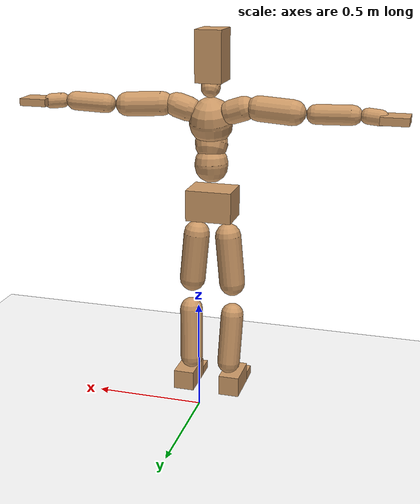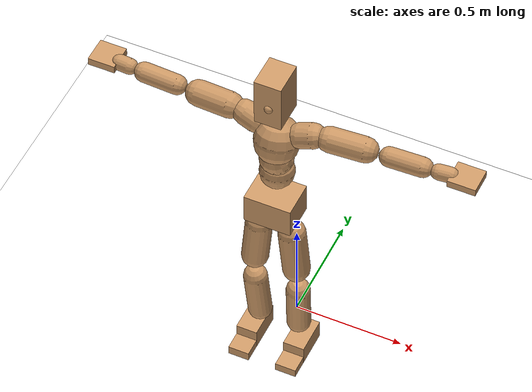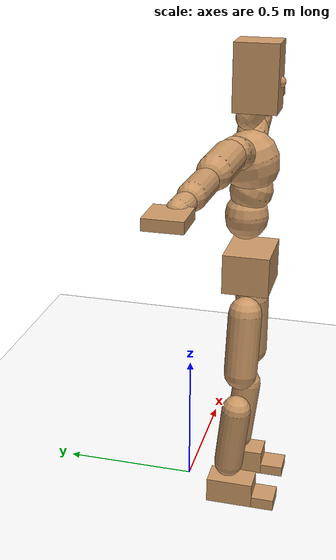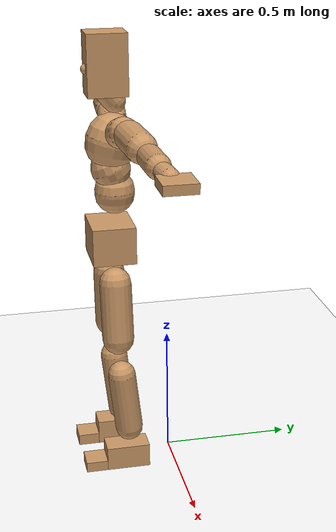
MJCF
<mujoco model="humanoid">
  <option integrator="implicitfast" />

  <visual>
    <global offwidth="1280" offheight="960" />
    <headlight active="1" ambient="0.34 0.34 0.34" diffuse="0.5 0.5 0.5" />
  </visual>

  <default>
    <joint damping="2" stiffness="2" armature="0.01" limited="true" solimplimit="0 .99 .01" />
    <geom condim="1" friction="0.7 0.005 0.0001" solimp=".99 .99 .003" solref="0.015 1" margin="0.001" rgba="0.8 0.6 .4 1" />
    <default class="smplcontact">
      <geom condim="3" friction="1. 0.005 0.0001" solref="0.015 1" solimp="0.98 0.98 0.001" priority="1" />
    </default>
    <default class="stiff_medium">
      <joint stiffness="10" />
    </default>
    <default class="stiff_medium_higher">
      <joint stiffness="50" />
    </default>
    <default class="stiff_high">
      <joint stiffness="100" />
    </default>
  </default>

  <asset>
    <texture type="skybox" builtin="gradient" rgb1="0.99 0.99 0.99" rgb2="0.608 0.828 0.892" width="100" />
    <texture builtin="flat" height="1278" mark="cross" markrgb="1 1 1" name="texgeom" random="0.01" rgb1="0.8 0.6 0.4" rgb2="0.8 0.6 0.4" type="cube" width="127" />
    <texture name="texplane" type="2d" builtin="checker" markrgb="1 1 1" rgb1="0.756 0.772 0.76" rgb2="0.6 0.6 0.6" width="100" height="100" />
    <material name="MatPlane" reflectance="0.5" texture="texplane" texrepeat="1 1" texuniform="true" />
    <material name="geom" texture="texgeom" texuniform="true" />
  </asset>

  <worldbody>
    <light name="tracking_light" pos="0 0 7" dir="0 0 -1" directional="true" cutoff="100" exponent="1" diffuse="1 1 1" specular="0.1 0.1 0.1" mode="trackcom" />
    <camera name="back" pos="0 3 2.4" xyaxes="-1 0 0 0 -1 2" mode="trackcom" />
    <camera name="side" pos="-3 0 2.4" xyaxes="0 -1 0 1 0 2" mode="trackcom" />
    <camera name="front_side" pos="-2.8 -2.8 0.8" xyaxes="0.5 -0.5 0 0.1 0.1 1" mode="trackcom" />
    <geom condim="3" name="floor" pos="0 0 0" rgba="1 1 1 1" size="100 100 .2" type="plane" material="MatPlane" />
    <body name="Pelvis" pos="-0.0018 -0.2233 0.9367" euler="90 0 0">
      <site name="Pelvis" size="0.01" />
      <freejoint name="Pelvis" />
      <geom type="box" pos="-0.0000 -0.0121 -0.0055" size="0.1069 0.0722 0.083" quat="1.0000 0.0000 0.0000 0.0000" density="3165.830099" name="Pelvis" />
      <body name="L_Hip" pos="0.0695 -0.0914 -0.0068">
        <joint name="L_Hip_x" type="hinge" pos="0 0 0" axis="1 0 0" stiffness="10.0" range="-160.0 22.92" class="stiff_medium" damping="14.999999999999998" armature="0.009999999999999998"/>
        <joint name="L_Hip_y" type="hinge" pos="0 0 0" axis="0 1 0" stiffness="10.0" range="-70.0 70.0" class="stiff_medium" damping="10.000000000000004" armature="0.010000000000000009"/>
        <joint name="L_Hip_z" type="hinge" pos="0 0 0" axis="0 0 1" stiffness="10.0" range="-28.65 90.0" class="stiff_medium" damping="9.999999999999998" armature="0.009999999999999998"/>
        <geom type="capsule" density="2040.816327" fromto="0.0069 -0.075 -0.0009 0.0274 -0.3002 -0.0036" size="0.0615" name="L_Hip" />
        <body name="L_Knee" pos="0.0343 -0.3752 -0.0045">
          <joint name="L_Knee_x" type="hinge" pos="0 0 0" axis="1 0 0" range="-5.16 171.89" damping="7.999999999999999" armature="0.009999999999999998" stiffness="2.0"/>
          <joint name="L_Knee_y" type="hinge" pos="0 0 0" axis="0 1 0" range="-4.58 6.88" damping="8.0" armature="0.01" stiffness="2.0"/>
          <joint name="L_Knee_z" type="hinge" pos="0 0 0" axis="0 0 1" range="-6.88 4.58" damping="7.9999999999999964" armature="0.009999999999999993" stiffness="2.0"/>
          <geom type="capsule" density="1234.567901" fromto="-0.0027 -0.0796 -0.0087 -0.0109 -0.3184 -0.035" size="0.0541" name="L_Knee" />
          <body name="L_Ankle" pos="-0.0136 -0.398 -0.0437">
            <joint name="L_Ankle_x" type="hinge" pos="0 0 0" axis="1 0 0" range="-45.84 45.84" class="stiff_medium" damping="6.000000000000075" armature="0.010000000000000248" stiffness="10.0"/>
            <joint name="L_Ankle_y" type="hinge" pos="0 0 0" axis="0 1 0" range="-74.48 22.92" class="stiff_medium" damping="2.9999999999999996" armature="0.009999999999999998" stiffness="10.0"/>
            <joint name="L_Ankle_z" type="hinge" pos="0 0 0" axis="0 0 1" range="-4.58 4.58" class="stiff_medium" damping="6.000000000000144" armature="0.010000000000000482" stiffness="10.0"/>
            <geom type="box" pos="0.0233 -0.0239 0.0242" size="0.0483 0.0464 0.085" quat="1.0000 0.0000 0.0000 0.0000" density="449.071558" name="L_Ankle" class="smplcontact" />
            <body name="L_Toe" pos="0.0264 -0.0558 0.1193">
              <joint name="L_Toe_x" type="hinge" pos="0 0 0" axis="1 0 0" range="-91.67 22.92" armature="0.009999999999999147" damping="1.9999999999999147" stiffness="2.0"/>
              <joint name="L_Toe_y" type="hinge" pos="0 0 0" axis="0 1 0" range="-4.58 4.58" armature="0.009999999999999976" damping="1.9999999999999976" stiffness="2.0"/>
              <joint name="L_Toe_z" type="hinge" pos="0 0 0" axis="0 0 1" range="-4.58 4.58" armature="0.009999999999998004" damping="1.9999999999998002" stiffness="2.0"/>
              <geom type="box" pos="-0.003 0.0055 0.0248" size="0.0478 0.02 0.0496" quat="1.0000 0.0000 0.0000 0.0000" density="423.206892" name="L_Toe" class="smplcontact" />
            </body>
          </body>
        </body>
      </body>
      <body name="R_Hip" pos="-0.0677 -0.0905 -0.0043">
        <joint name="R_Hip_x" type="hinge" pos="0 0 0" axis="1 0 0" stiffness="10.0" range="-160.0 22.92" class="stiff_medium" damping="14.999999999999998" armature="0.009999999999999998"/>
        <joint name="R_Hip_y" type="hinge" pos="0 0 0" axis="0 1 0" stiffness="10.0" range="-70.0 70.0" class="stiff_medium" damping="10.000000000000004" armature="0.010000000000000009"/>
        <joint name="R_Hip_z" type="hinge" pos="0 0 0" axis="0 0 1" stiffness="10.0" range="-90.0 28.65" class="stiff_medium" damping="9.999999999999998" armature="0.009999999999999998"/>
        <geom type="capsule" density="2040.816327" fromto="-0.0077 -0.0765 -0.0018 -0.0306 -0.3061 -0.0071" size="0.0606" name="R_Hip" />
        <body name="R_Knee" pos="-0.0383 -0.3826 -0.0089">
          <joint name="R_Knee_x" type="hinge" pos="0 0 0" axis="1 0 0" range="-5.16 171.89" damping="7.999999999999999" armature="0.009999999999999998" stiffness="2.0"/>
          <joint name="R_Knee_y" type="hinge" pos="0 0 0" axis="0 1 0" range="-6.88 4.58" damping="8.0" armature="0.01" stiffness="2.0"/>
          <joint name="R_Knee_z" type="hinge" pos="0 0 0" axis="0 0 1" range="-4.58 6.88" damping="7.9999999999999964" armature="0.009999999999999993" stiffness="2.0"/>
          <geom type="capsule" density="1234.567901" fromto="0.0032 -0.0797 -0.0085 0.0126 -0.3187 -0.0338" size="0.0541" name="R_Knee" />
          <body name="R_Ankle" pos="0.0158 -0.3984 -0.0423">
            <joint name="R_Ankle_x" type="hinge" pos="0 0 0" axis="1 0 0" range="-45.84 45.84" class="stiff_medium" damping="6.000000000000075" armature="0.010000000000000248" stiffness="10.0"/>
            <joint name="R_Ankle_y" type="hinge" pos="0 0 0" axis="0 1 0" range="-22.92 74.48" class="stiff_medium" damping="2.9999999999999996" armature="0.009999999999999998" stiffness="10.0"/>
            <joint name="R_Ankle_z" type="hinge" pos="0 0 0" axis="0 0 1" range="-4.58 4.58" class="stiff_medium" damping="6.000000000000144" armature="0.010000000000000482" stiffness="10.0"/>
            <geom type="box" pos="-0.0212 -0.0174 0.0256" size="0.0483 0.0478 0.0865" quat="1.0000 0.0000 0.0000 0.0000" density="434.700981" name="R_Ankle" class="smplcontact" />
            <body name="R_Toe" pos="-0.0254 -0.0481 0.1233">
              <joint name="R_Toe_x" type="hinge" pos="0 0 0" axis="1 0 0" range="-91.67 22.92" armature="0.009999999999999147" damping="1.9999999999999147" stiffness="2.0"/>
              <joint name="R_Toe_y" type="hinge" pos="0 0 0" axis="0 1 0" range="-4.58 4.58" armature="0.009999999999999976" damping="1.9999999999999976" stiffness="2.0"/>
              <joint name="R_Toe_z" type="hinge" pos="0 0 0" axis="0 0 1" range="-4.58 4.58" armature="0.009999999999998004" damping="1.9999999999998002" stiffness="2.0"/>
              <geom type="box" pos="0.0042 0.0045 0.0227" size="0.0479 0.0216 0.0493" quat="1.0000 0.0000 0.0000 0.0000" density="407.384095" name="R_Toe" class="smplcontact" />
            </body>
          </body>
        </body>
      </body>
      <body name="Torso" pos="-0.0025 0.109 -0.0267">
        <joint name="Torso_x" type="hinge" pos="0 0 0" axis="1 0 0" range="-25.78 57.3" class="stiff_medium" damping="15.908270111112087" armature="0.010577241207886777" stiffness="10.633861176470589"/>
        <joint name="Torso_y" type="hinge" pos="0 0 0" axis="0 1 0" range="-57.3 57.3" class="stiff_high" damping="22.396844353132916" armature="0.011846322965056274" stiffness="105.85956470588236"/>
        <joint name="Torso_z" type="hinge" pos="0 0 0" axis="0 0 1" range="-34.38 34.38" class="stiff_high" damping="21.512089946269967" armature="0.011013280140988863" stiffness="105.04818"/>
        <geom type="capsule" density="2040.816327" fromto="0.0025 0.0608 0.0005 0.003 0.0743 0.0006" size="0.0769" name="Torso" />
        <body name="Spine" pos="0.0055 0.1352 0.0011">
          <joint name="Spine_x" type="hinge" pos="0 0 0" axis="1 0 0" stiffness="10.655433921568626" range="-25.78 57.3" class="stiff_medium" damping="15.8654151336912" armature="0.010499031103321574"/>
          <joint name="Spine_y" type="hinge" pos="0 0 0" axis="0 1 0" stiffness="10.650494509803924" range="-57.3 57.3" class="stiff_high" damping="8.990909906850938" armature="0.011859258753006037"/>
          <joint name="Spine_z" type="hinge" pos="0 0 0" axis="0 0 1" stiffness="21.367421960784313" range="-34.38 34.38" class="stiff_high" damping="13.157591512495483" armature="0.011252996288216554"/>
          <geom type="capsule" density="2040.816327" fromto="0.0007 0.0238 0.0114 0.0008 0.0291 0.014" size="0.0755" name="Spine" />
          <body name="Chest" pos="0.0015 0.0529 0.0254">
            <joint name="Chest_x" type="hinge" pos="0 0 0" axis="1 0 0" stiffness="10.678460588235295" range="-25.78 57.3" class="stiff_medium" damping="15.8523471575378" armature="0.010459140136524768"/>
            <joint name="Chest_y" type="hinge" pos="0 0 0" axis="0 1 0" stiffness="11.165754081632652" range="-57.3 57.3" class="stiff_high" damping="9.209525861569277" armature="0.01186879178384829"/>
            <joint name="Chest_z" type="hinge" pos="0 0 0" axis="0 0 1" stiffness="21.219770980392155" range="-34.38 34.38" class="stiff_high" damping="13.178310114217842" armature="0.011367010408134872"/>
            <geom type="capsule" density="2040.816327" fromto="-0.0009 0.0682 -0.0173 -0.001 0.0833 -0.0212" size="0.1002" name="Chest" />
            <body name="Neck" pos="-0.0028 0.2139 -0.0429">
              <joint name="Neck_x" type="hinge" pos="0 0 0" axis="1 0 0" range="-28.65 57.3" class="stiff_medium_higher" damping="10.000000000000009" armature="0.010000000000000021" stiffness="50.0"/>
              <joint name="Neck_y" type="hinge" pos="0 0 0" axis="0 1 0" range="-40.11 40.11" class="stiff_medium_higher" damping="10.0" armature="0.010000000000000002" stiffness="50.0"/>
              <joint name="Neck_z" type="hinge" pos="0 0 0" axis="0 0 1" range="-40.11 40.11" class="stiff_medium_higher" damping="10.0" armature="0.01" stiffness="50.0"/>
              <geom type="capsule" density="1000" fromto="0.001 0.013 0.0103 0.0041 0.052 0.0411" size="0.0436" name="Neck" />
              <body name="Head" pos="0.0052 0.065 0.0513">
                <joint name="Head_x" type="hinge" pos="0 0 0" axis="1 0 0" range="-28.65 57.3" class="stiff_medium_higher" damping="2.000000000000005" armature="0.010000000000000049" stiffness="50.0"/>
                <joint name="Head_y" type="hinge" pos="0 0 0" axis="0 1 0" range="-40.11 40.11" class="stiff_medium_higher" damping="1.9999999999999998" armature="0.009999999999999998" stiffness="50.0"/>
                <joint name="Head_z" type="hinge" pos="0 0 0" axis="0 0 1" range="-40.11 40.11" class="stiff_medium_higher" damping="2.000000000000003" armature="0.010000000000000033" stiffness="50.0"/>
                <geom type="box" pos="-0.0042 0.0876 -0.0116" size="0.0606 0.1154 0.076" quat="1.0000 0.0000 0.0000 0.0000" density="1018.069894" name="Head" />
                <geom type="capsule" name="nose" size="0.02 0.01" pos="0 0.07 0.05" quat="1 0 0 0" mass="0" contype="0" conaffinity="0" />
              </body>
            </body>
            <body name="L_Thorax" pos="0.0788 0.1217 -0.0341">
              <joint name="L_Thorax_x" type="hinge" pos="0 0 0" axis="1 0 0" range="-10.89 4.58" class="stiff_medium_higher" damping="24.617894548023575" armature="0.012739282736675501" stiffness="59.465743137254904"/>
              <joint name="L_Thorax_y" type="hinge" pos="0 0 0" axis="0 1 0" range="-28.65 17.19" class="stiff_medium_higher" damping="23.825894665025523" armature="0.011953243154150011" stiffness="59.36393676470588"/>
              <joint name="L_Thorax_z" type="hinge" pos="0 0 0" axis="0 0 1" range="-31.51 40.11" class="stiff_medium_higher" damping="23.825372084701463" armature="0.011952533161535177" stiffness="59.36485882352942"/>
              <geom type="capsule" density="1000" fromto="0.0182 0.0061 -0.0018 0.0728 0.0244 -0.0071" size="0.0560075" name="L_Thorax" />
              <body name="L_Shoulder" pos="0.091 0.0305 -0.0089">
                <joint name="L_Shoulder_x" type="hinge" pos="0 0 0" axis="1 0 0" range="-97.4 97.4" class="stiff_medium" damping="7.478494239969782" armature="0.013045062541822085" stiffness="11.909119705882354"/>
                <joint name="L_Shoulder_y" type="hinge" pos="0 0 0" axis="0 1 0" range="-108.86 80.21" class="stiff_medium" damping="7.1580837094298895" armature="0.01198016053229578" stiffness="11.880327352941178"/>
                <joint name="L_Shoulder_z" type="hinge" pos="0 0 0" axis="0 0 1" range="-97.4 85.94" class="stiff_medium" damping="7.1584693568721605" armature="0.011979230464405804" stiffness="11.88253"/>
                <geom type="capsule" density="1000" fromto="0.0519 -0.0026 -0.0055 0.2077 -0.0102 -0.022" size="0.0555775" name="L_Shoulder" />
                <body name="L_Elbow" pos="0.2596 -0.0128 -0.0275">
                  <joint name="L_Elbow_x" type="hinge" pos="0 0 0" axis="1 0 0" range="-17.19 4.58" damping="6.365512535711371" armature="0.013538375900171769" stiffness="2.3943640000000004"/>
                  <joint name="L_Elbow_y" type="hinge" pos="0 0 0" axis="0 1 0" range="-180.0 17.19" damping="6.020694634182671" armature="0.01211151019586856" stiffness="2.394334862745098"/>
                  <joint name="L_Elbow_z" type="hinge" pos="0 0 0" axis="0 0 1" range="-100.84 4.58" damping="6.020140283438718" armature="0.012106629456544464" stiffness="2.3948590588235295"/>
                  <geom type="capsule" density="1000" fromto="0.0498 0.0018 -0.0002 0.1994 0.0072 -0.0009" size="0.0435375" name="L_Elbow" />
                  <body name="L_Wrist" pos="0.2492 0.009 -0.0012">
                    <joint name="L_Wrist_x" type="hinge" pos="0 0 0" axis="1 0 0" range="-180.0 22.92" armature="0.013693588371446653" damping="2.5919731595345876" stiffness="2.453091431372549"/>
                    <joint name="L_Wrist_y" type="hinge" pos="0 0 0" axis="0 1 0" range="-17.19 17.19" armature="0.01256742673757628" damping="2.4809214159661654" stiffness="2.4487793725490197"/>
                    <joint name="L_Wrist_z" type="hinge" pos="0 0 0" axis="0 0 1" range="-22.92 22.92" armature="0.012504340393661138" damping="2.4754306422398327" stiffness="2.4502519411764707"/>
                    <geom type="capsule" density="1000" fromto="0.0168 -0.0016 -0.003 0.0672 -0.0065 -0.012" size="0.034185" name="L_Wrist" class="smplcontact" />
                    <body name="L_Hand" pos="0.084 -0.0082 -0.0149">
                      <joint name="L_Hand_x" type="hinge" pos="0 0 0" axis="1 0 0" range="-17.19 17.19" armature="0.01427206573570279" damping="2.663091770650525" stiffness="2.484594"/>
                      <joint name="L_Hand_y" type="hinge" pos="0 0 0" axis="0 1 0" range="-51.57 51.57" armature="0.01333767753891355" damping="2.5744402726464397" stiffness="2.484594"/>
                      <joint name="L_Hand_z" type="hinge" pos="0 0 0" axis="0 0 1" range="-91.67 91.67" armature="0.013088603598437698" damping="2.5502888451725116" stiffness="2.484594"/>
                      <geom type="box" pos="0.0493 0.001 -0.0058" size="0.0628875 0.016985 0.057835" quat="1.0000 0.0000 0.0000 0.0000" density="400.552564" name="L_Hand" class="smplcontact" />
                    </body>
                  </body>
                </body>
              </body>
            </body>
            <body name="R_Thorax" pos="-0.0818 0.1188 -0.0386">
              <joint name="R_Thorax_x" type="hinge" pos="0 0 0" axis="1 0 0" range="-10.89 4.58" class="stiff_medium_higher" damping="24.617894548023575" armature="0.012739282736675501" stiffness="59.465743137254904"/>
              <joint name="R_Thorax_y" type="hinge" pos="0 0 0" axis="0 1 0" range="-17.19 28.65" class="stiff_medium_higher" damping="23.825894665025523" armature="0.011953243154150011" stiffness="59.36393676470588"/>
              <joint name="R_Thorax_z" type="hinge" pos="0 0 0" axis="0 0 1" range="-40.11 31.51" class="stiff_medium_higher" damping="23.825372084701463" armature="0.011952533161535177" stiffness="59.36485882352942"/>
              <geom type="capsule" density="1000" fromto="-0.0192 0.0065 -0.0018 -0.0768 0.026 -0.0073" size="0.0549325" name="R_Thorax" />
              <body name="R_Shoulder" pos="-0.096 0.0326 -0.0091">
                <joint name="R_Shoulder_x" type="hinge" pos="0 0 0" axis="1 0 0" range="-97.4 97.4" class="stiff_medium" damping="7.478494239969782" armature="0.013045062541822085" stiffness="11.909119705882354"/>
                <joint name="R_Shoulder_y" type="hinge" pos="0 0 0" axis="0 1 0" range="-80.21 108.86" class="stiff_medium" damping="7.1580837094298895" armature="0.01198016053229578" stiffness="11.880327352941178"/>
                <joint name="R_Shoulder_z" type="hinge" pos="0 0 0" axis="0 0 1" range="-85.94 97.4" class="stiff_medium" damping="7.1584693568721605" armature="0.011979230464405804" stiffness="11.88253"/>
                <geom type="capsule" density="1000" fromto="-0.0507 -0.0027 -0.0043 -0.203 -0.0107 -0.0171" size="0.0570825" name="R_Shoulder" />
                <body name="R_Elbow" pos="-0.2537 -0.0133 -0.0214">
                  <joint name="R_Elbow_x" type="hinge" pos="0 0 0" axis="1 0 0" range="-17.19 4.58" damping="6.365512535711371" armature="0.013538375900171769" stiffness="2.3943640000000004"/>
                  <joint name="R_Elbow_y" type="hinge" pos="0 0 0" axis="0 1 0" range="-17.19 180.0" damping="6.020694634182671" armature="0.01211151019586856" stiffness="2.394334862745098"/>
                  <joint name="R_Elbow_z" type="hinge" pos="0 0 0" axis="0 0 1" range="-4.58 100.84" damping="6.020140283438718" armature="0.012106629456544464" stiffness="2.3948590588235295"/>
                  <geom type="capsule" density="1000" fromto="-0.0511 0.0016 -0.0011 -0.2042 0.0062 -0.0044" size="0.04386" name="R_Elbow" />
                  <body name="R_Wrist" pos="-0.2553 0.0078 -0.0056">
                    <joint name="R_Wrist_x" type="hinge" pos="0 0 0" axis="1 0 0" range="-180.0 22.92" armature="0.013693588371446653" damping="2.5919731595345876" stiffness="2.453091431372549"/>
                    <joint name="R_Wrist_y" type="hinge" pos="0 0 0" axis="0 1 0" range="-17.19 17.19" armature="0.01256742673757628" damping="2.4809214159661654" stiffness="2.4487793725490197"/>
                    <joint name="R_Wrist_z" type="hinge" pos="0 0 0" axis="0 0 1" range="-22.92 22.92" armature="0.012504340393661138" damping="2.4754306422398327" stiffness="2.4502519411764707"/>
                    <geom type="capsule" density="1000" fromto="-0.0169 -0.0012 -0.0021 -0.0677 -0.0049 -0.0083" size="0.035045" name="R_Wrist" class="smplcontact" />
                    <body name="R_Hand" pos="-0.0846 -0.0061 -0.0103">
                      <joint name="R_Hand_x" type="hinge" pos="0 0 0" axis="1 0 0" range="-17.19 17.19" armature="0.01427206573570279" damping="2.663091770650525" stiffness="2.484594"/>
                      <joint name="R_Hand_y" type="hinge" pos="0 0 0" axis="0 1 0" range="-51.57 51.57" armature="0.01333767753891355" damping="2.5744402726464397" stiffness="2.484594"/>
                      <joint name="R_Hand_z" type="hinge" pos="0 0 0" axis="0 0 1" range="-91.67 91.67" armature="0.013088603598437698" damping="2.5502888451725116" stiffness="2.484594"/>
                      <geom type="box" pos="-0.0462 -0.0009 -0.0079" size="0.0611675 0.01763 0.058695" quat="1.0000 0.0000 0.0000 0.0000" density="403.679611" name="R_Hand" class="smplcontact" />
                    </body>
                  </body>
                </body>
              </body>
            </body>
          </body>
        </body>
      </body>
    </body>
  </worldbody>
  <actuator>
    <general name="L_Hip_x" joint="L_Hip_x" biastype="affine" gainprm="287.33006409732246" biasprm="-215.3247604770444 -180.0 -1.9999999999999998" ctrllimited="true" ctrlrange="-1 1" forcerange="-360.0 360.0" />
    <general name="L_Hip_y" joint="L_Hip_y" biastype="affine" gainprm="219.9114857512855" biasprm="0.0 -180.0 -2.000000000000001" ctrllimited="true" ctrlrange="-1 1" forcerange="-360.0 360.0" />
    <general name="L_Hip_z" joint="L_Hip_z" biastype="affine" gainprm="186.3749841742145" biasprm="96.3683546488669 -180.0 -1.9999999999999998" ctrllimited="true" ctrlrange="-1 1" forcerange="-360.0 360.0" />
    <general name="L_Knee_x" joint="L_Knee_x" biastype="affine" gainprm="278.10948965903646" biasprm="261.8988715665131 -180.0 -1.9999999999999998" ctrllimited="true" ctrlrange="-1 1" forcerange="-360.0 360.0" />
    <general name="L_Knee_y" joint="L_Knee_y" biastype="affine" gainprm="18.001325905069514" biasprm="3.612831551628262 -180.0 -2.0" ctrllimited="true" ctrlrange="-1 1" forcerange="-360.0 360.0" />
    <general name="L_Knee_z" joint="L_Knee_z" biastype="affine" gainprm="18.001325905069514" biasprm="-3.612831551628262 -180.0 -1.9999999999999991" ctrllimited="true" ctrlrange="-1 1" forcerange="-360.0 360.0" />
    <general name="L_Ankle_x" joint="L_Ankle_x" biastype="affine" gainprm="72.00530362027807" biasprm="0.0 -90.0 -2.000000000000025" ctrllimited="true" ctrlrange="-1 1" forcerange="-180.0 180.0" />
    <general name="L_Ankle_y" joint="L_Ankle_y" biastype="affine" gainprm="76.49778111491148" biasprm="-40.49512930477244 -90.0 -1.9999999999999998" ctrllimited="true" ctrlrange="-1 1" forcerange="-180.0 180.0" />
    <general name="L_Ankle_z" joint="L_Ankle_z" biastype="affine" gainprm="7.1942471767206255" biasprm="0.0 -90.0 -2.000000000000048" ctrllimited="true" ctrlrange="-1 1" forcerange="-180.0 180.0" />
    <general name="L_Toe_x" joint="L_Toe_x" biastype="affine" gainprm="71.99902043497087" biasprm="-43.19689898685965 -72.0 -0.799999999999966" ctrllimited="true" ctrlrange="-1 1" forcerange="-144.0 144.0" />
    <general name="L_Toe_y" joint="L_Toe_y" biastype="affine" gainprm="5.755397741376501" biasprm="0.0 -72.0 -0.799999999999999" ctrllimited="true" ctrlrange="-1 1" forcerange="-144.0 144.0" />
    <general name="L_Toe_z" joint="L_Toe_z" biastype="affine" gainprm="5.755397741376501" biasprm="0.0 -72.0 -0.7999999999999201" ctrllimited="true" ctrlrange="-1 1" forcerange="-144.0 144.0" />
    <general name="R_Hip_x" joint="R_Hip_x" biastype="affine" gainprm="287.33006409732246" biasprm="-215.3247604770444 -180.0 -1.9999999999999998" ctrllimited="true" ctrlrange="-1 1" forcerange="-360.0 360.0" />
    <general name="R_Hip_y" joint="R_Hip_y" biastype="affine" gainprm="219.9114857512855" biasprm="0.0 -180.0 -2.000000000000001" ctrllimited="true" ctrlrange="-1 1" forcerange="-360.0 360.0" />
    <general name="R_Hip_z" joint="R_Hip_z" biastype="affine" gainprm="186.3749841742145" biasprm="-96.3683546488669 -180.0 -1.9999999999999998" ctrllimited="true" ctrlrange="-1 1" forcerange="-360.0 360.0" />
    <general name="R_Knee_x" joint="R_Knee_x" biastype="affine" gainprm="278.10948965903646" biasprm="261.8988715665131 -180.0 -1.9999999999999998" ctrllimited="true" ctrlrange="-1 1" forcerange="-360.0 360.0" />
    <general name="R_Knee_y" joint="R_Knee_y" biastype="affine" gainprm="18.001325905069514" biasprm="-3.612831551628262 -180.0 -2.0" ctrllimited="true" ctrlrange="-1 1" forcerange="-360.0 360.0" />
    <general name="R_Knee_z" joint="R_Knee_z" biastype="affine" gainprm="18.001325905069514" biasprm="3.612831551628262 -180.0 -1.9999999999999991" ctrllimited="true" ctrlrange="-1 1" forcerange="-360.0 360.0" />
    <general name="R_Ankle_x" joint="R_Ankle_x" biastype="affine" gainprm="72.00530362027807" biasprm="0.0 -90.0 -2.000000000000025" ctrllimited="true" ctrlrange="-1 1" forcerange="-180.0 180.0" />
    <general name="R_Ankle_y" joint="R_Ankle_y" biastype="affine" gainprm="76.49778111491148" biasprm="40.49512930477244 -90.0 -1.9999999999999998" ctrllimited="true" ctrlrange="-1 1" forcerange="-180.0 180.0" />
    <general name="R_Ankle_z" joint="R_Ankle_z" biastype="affine" gainprm="7.1942471767206255" biasprm="0.0 -90.0 -2.000000000000048" ctrllimited="true" ctrlrange="-1 1" forcerange="-180.0 180.0" />
    <general name="R_Toe_x" joint="R_Toe_x" biastype="affine" gainprm="71.99902043497087" biasprm="-43.19689898685965 -72.0 -0.799999999999966" ctrllimited="true" ctrlrange="-1 1" forcerange="-144.0 144.0" />
    <general name="R_Toe_y" joint="R_Toe_y" biastype="affine" gainprm="5.755397741376501" biasprm="0.0 -72.0 -0.799999999999999" ctrllimited="true" ctrlrange="-1 1" forcerange="-144.0 144.0" />
    <general name="R_Toe_z" joint="R_Toe_z" biastype="affine" gainprm="5.755397741376501" biasprm="0.0 -72.0 -0.7999999999999201" ctrllimited="true" ctrlrange="-1 1" forcerange="-144.0 144.0" />
    <general name="Torso_x" joint="Torso_x" biastype="affine" gainprm="185.03167822463215" biasprm="70.19978933125185 -255.21266823529413 -4.242205362963223" ctrllimited="true" ctrlrange="-1 1" forcerange="-382.8190023529412 382.8190023529412" />
    <general name="Torso_y" joint="Torso_y" biastype="affine" gainprm="254.081669925251" biasprm="0.0 -254.06295529411767 -4.479368870626583" ctrllimited="true" ctrlrange="-1 1" forcerange="-381.0944329411765 381.0944329411765" />
    <general name="Torso_z" joint="Torso_z" biastype="affine" gainprm="151.28052191315246" biasprm="0.0 -252.115632 -4.3024179892539935" ctrllimited="true" ctrlrange="-1 1" forcerange="-378.173448 378.173448" />
    <general name="Spine_x" joint="Spine_x" biastype="affine" gainprm="185.4070490483772" biasprm="70.3422025277425 -255.73041411764703 -4.23077736898432" ctrllimited="true" ctrlrange="-1 1" forcerange="-383.59562117647056 383.59562117647056" />
    <general name="Spine_y" joint="Spine_y" biastype="affine" gainprm="255.63069696151197" biasprm="0.0 -255.61186823529414 -4.495454953425469" ctrllimited="true" ctrlrange="-1 1" forcerange="-383.41780235294124 383.41780235294124" />
    <general name="Spine_z" joint="Spine_z" biastype="affine" gainprm="153.85677058688717" biasprm="0.0 -256.40906352941175 -4.385863837498494" ctrllimited="true" ctrlrange="-1 1" forcerange="-384.6135952941176 384.6135952941176" />
    <general name="Chest_x" joint="Chest_x" biastype="affine" gainprm="185.8077184483765" biasprm="70.49421383597529 -256.28305411764705 -4.227292575343413" ctrllimited="true" ctrlrange="-1 1" forcerange="-384.4245811764706 384.4245811764706" />
    <general name="Chest_y" joint="Chest_y" biastype="affine" gainprm="267.99783759910605" biasprm="0.0 -267.9780979591837 -4.604762930784639" ctrllimited="true" ctrlrange="-1 1" forcerange="-401.9671469387755 401.9671469387755" />
    <general name="Chest_z" joint="Chest_z" biastype="affine" gainprm="152.7936052195903" biasprm="0.0 -254.63725176470587 -4.392770038072614" ctrllimited="true" ctrlrange="-1 1" forcerange="-381.9558776470588 381.9558776470588" />
    <general name="Neck_x" joint="Neck_x" biastype="affine" gainprm="27.00198885760427" biasprm="9.000662952534757 -36.0 -0.8000000000000007" ctrllimited="true" ctrlrange="-1 1" forcerange="-72.0 72.0" />
    <general name="Neck_y" joint="Neck_y" biastype="affine" gainprm="25.20185626709732" biasprm="0.0 -36.0 -0.8" ctrllimited="true" ctrlrange="-1 1" forcerange="-72.0 72.0" />
    <general name="Neck_z" joint="Neck_z" biastype="affine" gainprm="25.20185626709732" biasprm="0.0 -36.0 -0.8" ctrllimited="true" ctrlrange="-1 1" forcerange="-72.0 72.0" />
    <general name="Head_x" joint="Head_x" biastype="affine" gainprm="18.001325905069514" biasprm="6.000441968356505 -24.0 -0.800000000000002" ctrllimited="true" ctrlrange="-1 1" forcerange="-48.0 48.0" />
    <general name="Head_y" joint="Head_y" biastype="affine" gainprm="16.801237511398213" biasprm="0.0 -24.0 -0.7999999999999999" ctrllimited="true" ctrlrange="-1 1" forcerange="-48.0 48.0" />
    <general name="Head_z" joint="Head_z" biastype="affine" gainprm="16.801237511398213" biasprm="0.0 -24.0 -0.8000000000000013" ctrllimited="true" ctrlrange="-1 1" forcerange="-48.0 48.0" />
    <general name="L_Thorax_x" joint="L_Thorax_x" biastype="affine" gainprm="19.2670745556039" biasprm="-7.858774430889508 -142.71778352941175 -1.9694315638418862" ctrllimited="true" ctrlrange="-1 1" forcerange="-285.4355670588235 285.4355670588235" />
    <general name="L_Thorax_y" joint="L_Thorax_y" biastype="affine" gainprm="56.99357721116846" biasprm="-14.248394302792114 -142.47344823529411 -1.9060715732020421" ctrllimited="true" ctrlrange="-1 1" forcerange="-284.94689647058823 284.94689647058823" />
    <general name="L_Thorax_z" joint="L_Thorax_z" biastype="affine" gainprm="89.04763090908752" biasprm="10.69267838338666 -142.47566117647062 -1.906029766776117" ctrllimited="true" ctrlrange="-1 1" forcerange="-284.95132235294125 284.95132235294125" />
    <general name="L_Shoulder_x" joint="L_Shoulder_x" biastype="affine" gainprm="97.1755981367325" biasprm="0.0 -57.1637745882353 -1.9942651306586088" ctrllimited="true" ctrlrange="-1 1" forcerange="-114.3275491764706 114.3275491764706" />
    <general name="L_Shoulder_y" joint="L_Shoulder_y" biastype="affine" gainprm="94.08917075748148" biasprm="-14.257442969280397 -57.025571294117654 -1.9088223225146372" ctrllimited="true" ctrlrange="-1 1" forcerange="-114.05114258823531 114.05114258823531" />
    <general name="L_Shoulder_z" joint="L_Shoulder_z" biastype="affine" gainprm="91.25459789383227" biasprm="-5.70403453618043 -57.036144 -1.9089251618325762" ctrllimited="true" ctrlrange="-1 1" forcerange="-114.072288 114.072288" />
    <general name="L_Elbow_x" joint="L_Elbow_x" biastype="affine" gainprm="16.375647299218063" biasprm="-9.485388720401463 -86.19710400000001 -1.0184820057138193" ctrllimited="true" ctrlrange="-1 1" forcerange="-172.39420800000002 172.39420800000002" />
    <general name="L_Elbow_y" joint="L_Elbow_y" biastype="affine" gainprm="148.326807327654" biasprm="-122.46608601356736 -86.19605505882353 -0.9633111414692274" ctrllimited="true" ctrlrange="-1 1" forcerange="-172.39211011764706 172.39211011764706" />
    <general name="L_Elbow_z" joint="L_Elbow_z" biastype="affine" gainprm="79.31454627689563" biasprm="-72.42286306786164 -86.21492611764705 -0.963222445350195" ctrllimited="true" ctrlrange="-1 1" forcerange="-172.4298522352941 172.4298522352941" />
    <general name="L_Wrist_x" joint="L_Wrist_x" biastype="affine" gainprm="26.063768613556924" biasprm="-20.175915502747493 -14.718548588235294 -1.0367892638138352" ctrllimited="true" ctrlrange="-1 1" forcerange="-29.437097176470587 29.437097176470587" />
    <general name="L_Wrist_y" joint="L_Wrist_y" biastype="affine" gainprm="4.408127555486655" biasprm="0.0 -14.692676235294119 -0.9923685663864662" ctrllimited="true" ctrlrange="-1 1" forcerange="-29.385352470588238 29.385352470588238" />
    <general name="L_Wrist_z" joint="L_Wrist_z" biastype="affine" gainprm="5.881037832352916" biasprm="0.0 -14.701511647058824 -0.9901722568959331" ctrllimited="true" ctrlrange="-1 1" forcerange="-29.40302329411765 29.40302329411765" />
    <general name="L_Hand_x" joint="L_Hand_x" biastype="affine" gainprm="4.47259863357803" biasprm="0.0 -14.907564 -1.0652367082602099" ctrllimited="true" ctrlrange="-1 1" forcerange="-29.815128 29.815128" />
    <general name="L_Hand_y" joint="L_Hand_y" biastype="affine" gainprm="13.417795900734085" biasprm="0.0 -14.907564 -1.029776109058576" ctrllimited="true" ctrlrange="-1 1" forcerange="-29.815128 29.815128" />
    <general name="L_Hand_z" joint="L_Hand_z" biastype="affine" gainprm="23.8512575183303" biasprm="0.0 -14.907564 -1.0201155380690048" ctrllimited="true" ctrlrange="-1 1" forcerange="-29.815128 29.815128" />
    <general name="R_Thorax_x" joint="R_Thorax_x" biastype="affine" gainprm="19.2670745556039" biasprm="-7.858774430889508 -142.71778352941175 -1.9694315638418862" ctrllimited="true" ctrlrange="-1 1" forcerange="-285.4355670588235 285.4355670588235" />
    <general name="R_Thorax_y" joint="R_Thorax_y" biastype="affine" gainprm="56.99357721116846" biasprm="14.248394302792105 -142.47344823529411 -1.9060715732020421" ctrllimited="true" ctrlrange="-1 1" forcerange="-284.94689647058823 284.94689647058823" />
    <general name="R_Thorax_z" joint="R_Thorax_z" biastype="affine" gainprm="89.04763090908752" biasprm="-10.69267838338666 -142.47566117647062 -1.906029766776117" ctrllimited="true" ctrlrange="-1 1" forcerange="-284.95132235294125 284.95132235294125" />
    <general name="R_Shoulder_x" joint="R_Shoulder_x" biastype="affine" gainprm="97.1755981367325" biasprm="0.0 -57.1637745882353 -1.9942651306586088" ctrllimited="true" ctrlrange="-1 1" forcerange="-114.3275491764706 114.3275491764706" />
    <general name="R_Shoulder_y" joint="R_Shoulder_y" biastype="affine" gainprm="94.08917075748148" biasprm="14.257442969280397 -57.025571294117654 -1.9088223225146372" ctrllimited="true" ctrlrange="-1 1" forcerange="-114.05114258823531 114.05114258823531" />
    <general name="R_Shoulder_z" joint="R_Shoulder_z" biastype="affine" gainprm="91.25459789383227" biasprm="5.7040345361804174 -57.036144 -1.9089251618325762" ctrllimited="true" ctrlrange="-1 1" forcerange="-114.072288 114.072288" />
    <general name="R_Elbow_x" joint="R_Elbow_x" biastype="affine" gainprm="16.375647299218063" biasprm="-9.485388720401463 -86.19710400000001 -1.0184820057138193" ctrllimited="true" ctrlrange="-1 1" forcerange="-172.39420800000002 172.39420800000002" />
    <general name="R_Elbow_y" joint="R_Elbow_y" biastype="affine" gainprm="148.326807327654" biasprm="122.46608601356736 -86.19605505882353 -0.9633111414692274" ctrllimited="true" ctrlrange="-1 1" forcerange="-172.39211011764706 172.39211011764706" />
    <general name="R_Elbow_z" joint="R_Elbow_z" biastype="affine" gainprm="79.31454627689563" biasprm="72.42286306786163 -86.21492611764705 -0.963222445350195" ctrllimited="true" ctrlrange="-1 1" forcerange="-172.4298522352941 172.4298522352941" />
    <general name="R_Wrist_x" joint="R_Wrist_x" biastype="affine" gainprm="26.063768613556924" biasprm="-20.175915502747493 -14.718548588235294 -1.0367892638138352" ctrllimited="true" ctrlrange="-1 1" forcerange="-29.437097176470587 29.437097176470587" />
    <general name="R_Wrist_y" joint="R_Wrist_y" biastype="affine" gainprm="4.408127555486655" biasprm="0.0 -14.692676235294119 -0.9923685663864662" ctrllimited="true" ctrlrange="-1 1" forcerange="-29.385352470588238 29.385352470588238" />
    <general name="R_Wrist_z" joint="R_Wrist_z" biastype="affine" gainprm="5.881037832352916" biasprm="0.0 -14.701511647058824 -0.9901722568959331" ctrllimited="true" ctrlrange="-1 1" forcerange="-29.40302329411765 29.40302329411765" />
    <general name="R_Hand_x" joint="R_Hand_x" biastype="affine" gainprm="4.47259863357803" biasprm="0.0 -14.907564 -1.0652367082602099" ctrllimited="true" ctrlrange="-1 1" forcerange="-29.815128 29.815128" />
    <general name="R_Hand_y" joint="R_Hand_y" biastype="affine" gainprm="13.417795900734085" biasprm="0.0 -14.907564 -1.029776109058576" ctrllimited="true" ctrlrange="-1 1" forcerange="-29.815128 29.815128" />
    <general name="R_Hand_z" joint="R_Hand_z" biastype="affine" gainprm="23.8512575183303" biasprm="0.0 -14.907564 -1.0201155380690048" ctrllimited="true" ctrlrange="-1 1" forcerange="-29.815128 29.815128" />
  </actuator>
  <contact>
    <exclude body1="Torso" body2="Chest" />
    <exclude body1="Head" body2="Chest" />
    <exclude body1="R_Knee" body2="R_Toe" />
    <exclude body1="R_Knee" body2="L_Ankle" />
    <exclude body1="R_Knee" body2="L_Toe" />
    <exclude body1="L_Knee" body2="L_Toe" />
    <exclude body1="L_Knee" body2="R_Ankle" />
    <exclude body1="L_Knee" body2="R_Toe" />
    <exclude body1="L_Shoulder" body2="Chest" />
    <exclude body1="R_Shoulder" body2="Chest" />
  </contact>
  <sensor>
    <framelinvel name="sensor_Pelvis_framelinvel" objtype="xbody" objname="Pelvis" />
    <framelinvel name="sensor_L_Hip_framelinvel" objtype="xbody" objname="L_Hip" />
    <framelinvel name="sensor_L_Knee_framelinvel" objtype="xbody" objname="L_Knee" />
    <framelinvel name="sensor_L_Ankle_framelinvel" objtype="xbody" objname="L_Ankle" />
    <framelinvel name="sensor_L_Toe_framelinvel" objtype="xbody" objname="L_Toe" />
    <framelinvel name="sensor_R_Hip_framelinvel" objtype="xbody" objname="R_Hip" />
    <framelinvel name="sensor_R_Knee_framelinvel" objtype="xbody" objname="R_Knee" />
    <framelinvel name="sensor_R_Ankle_framelinvel" objtype="xbody" objname="R_Ankle" />
    <framelinvel name="sensor_R_Toe_framelinvel" objtype="xbody" objname="R_Toe" />
    <framelinvel name="sensor_Torso_framelinvel" objtype="xbody" objname="Torso" />
    <framelinvel name="sensor_Spine_framelinvel" objtype="xbody" objname="Spine" />
    <framelinvel name="sensor_Chest_framelinvel" objtype="xbody" objname="Chest" />
    <framelinvel name="sensor_Neck_framelinvel" objtype="xbody" objname="Neck" />
    <framelinvel name="sensor_Head_framelinvel" objtype="xbody" objname="Head" />
    <framelinvel name="sensor_L_Thorax_framelinvel" objtype="xbody" objname="L_Thorax" />
    <framelinvel name="sensor_L_Shoulder_framelinvel" objtype="xbody" objname="L_Shoulder" />
    <framelinvel name="sensor_L_Elbow_framelinvel" objtype="xbody" objname="L_Elbow" />
    <framelinvel name="sensor_L_Wrist_framelinvel" objtype="xbody" objname="L_Wrist" />
    <framelinvel name="sensor_L_Hand_framelinvel" objtype="xbody" objname="L_Hand" />
    <framelinvel name="sensor_R_Thorax_framelinvel" objtype="xbody" objname="R_Thorax" />
    <framelinvel name="sensor_R_Shoulder_framelinvel" objtype="xbody" objname="R_Shoulder" />
    <framelinvel name="sensor_R_Elbow_framelinvel" objtype="xbody" objname="R_Elbow" />
    <framelinvel name="sensor_R_Wrist_framelinvel" objtype="xbody" objname="R_Wrist" />
    <framelinvel name="sensor_R_Hand_framelinvel" objtype="xbody" objname="R_Hand" />
    <frameangvel name="sensor_Pelvis_frameangvel" objtype="xbody" objname="Pelvis" />
    <frameangvel name="sensor_L_Hip_frameangvel" objtype="xbody" objname="L_Hip" />
    <frameangvel name="sensor_L_Knee_frameangvel" objtype="xbody" objname="L_Knee" />
    <frameangvel name="sensor_L_Ankle_frameangvel" objtype="xbody" objname="L_Ankle" />
    <frameangvel name="sensor_L_Toe_frameangvel" objtype="xbody" objname="L_Toe" />
    <frameangvel name="sensor_R_Hip_frameangvel" objtype="xbody" objname="R_Hip" />
    <frameangvel name="sensor_R_Knee_frameangvel" objtype="xbody" objname="R_Knee" />
    <frameangvel name="sensor_R_Ankle_frameangvel" objtype="xbody" objname="R_Ankle" />
    <frameangvel name="sensor_R_Toe_frameangvel" objtype="xbody" objname="R_Toe" />
    <frameangvel name="sensor_Torso_frameangvel" objtype="xbody" objname="Torso" />
    <frameangvel name="sensor_Spine_frameangvel" objtype="xbody" objname="Spine" />
    <frameangvel name="sensor_Chest_frameangvel" objtype="xbody" objname="Chest" />
    <frameangvel name="sensor_Neck_frameangvel" objtype="xbody" objname="Neck" />
    <frameangvel name="sensor_Head_frameangvel" objtype="xbody" objname="Head" />
    <frameangvel name="sensor_L_Thorax_frameangvel" objtype="xbody" objname="L_Thorax" />
    <frameangvel name="sensor_L_Shoulder_frameangvel" objtype="xbody" objname="L_Shoulder" />
    <frameangvel name="sensor_L_Elbow_frameangvel" objtype="xbody" objname="L_Elbow" />
    <frameangvel name="sensor_L_Wrist_frameangvel" objtype="xbody" objname="L_Wrist" />
    <frameangvel name="sensor_L_Hand_frameangvel" objtype="xbody" objname="L_Hand" />
    <frameangvel name="sensor_R_Thorax_frameangvel" objtype="xbody" objname="R_Thorax" />
    <frameangvel name="sensor_R_Shoulder_frameangvel" objtype="xbody" objname="R_Shoulder" />
    <frameangvel name="sensor_R_Elbow_frameangvel" objtype="xbody" objname="R_Elbow" />
    <frameangvel name="sensor_R_Wrist_frameangvel" objtype="xbody" objname="R_Wrist" />
    <frameangvel name="sensor_R_Hand_frameangvel" objtype="xbody" objname="R_Hand" />
    <subtreelinvel name="Chest_subtreelinvel" body="Chest" />
    <gyro name="Pelvis_gyro" site="Pelvis" />
  </sensor>
</mujoco>
